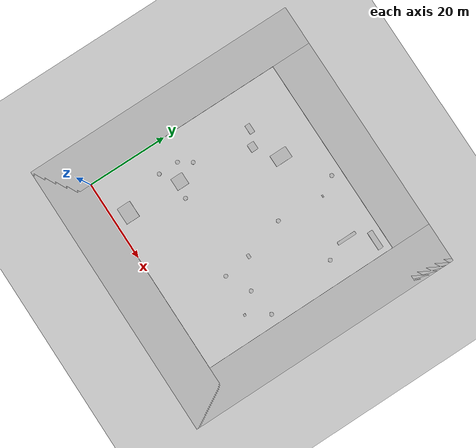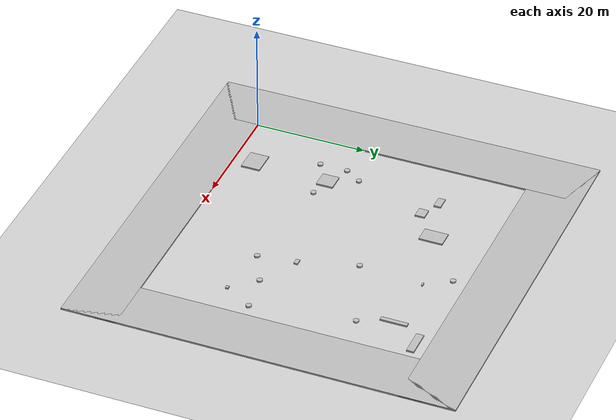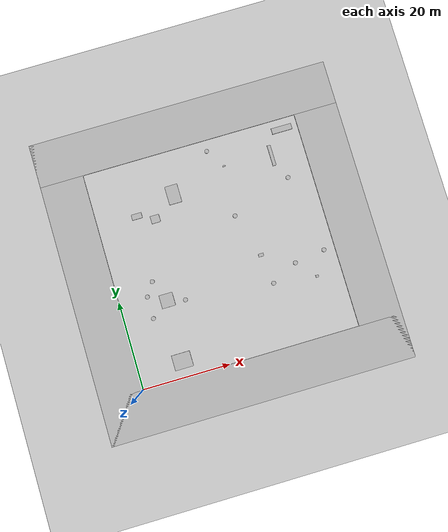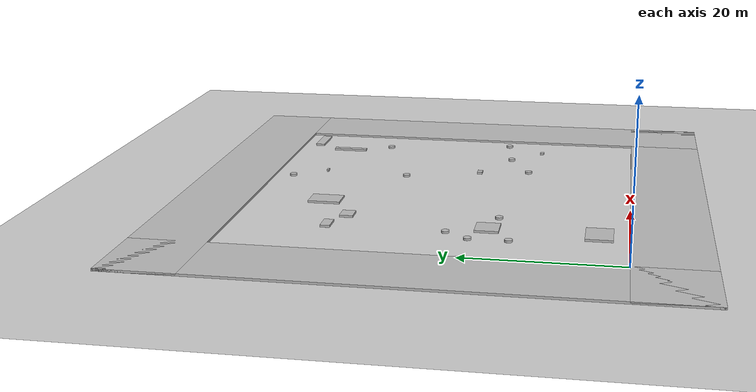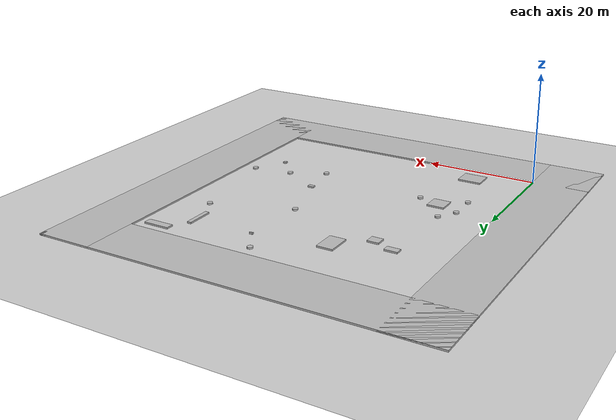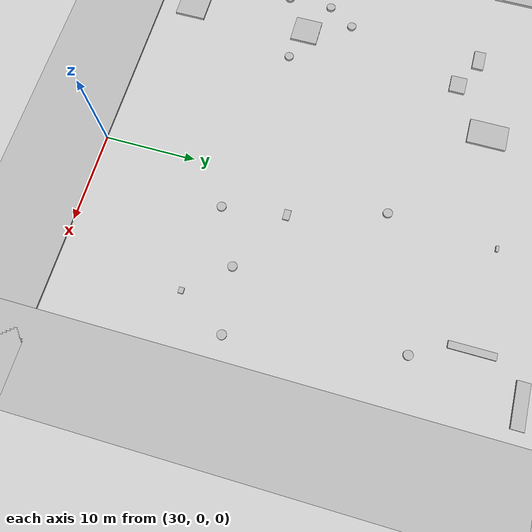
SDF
<?xml version="1.0" encoding="UTF-8" standalone="no"?>
<sdf version="1.5">
	<world name="default">
		<include>
			<uri>model://sun</uri>
		</include>
		<include>
			<uri>model://ground_plane</uri>
		</include>
		<physics type="ode">
			<real_time_update>1000.0</real_time_update>
			<real_time_factor>1</real_time_factor>
			<max_step_size>0.001</max_step_size>
			<ode>
				<solver>
					<type>quick</type>
					<iters>150</iters>
					<precon_iters>0</precon_iters>
					<sor>1.400000</sor>
					<use_dynamic_moi_rescaling>1</use_dynamic_moi_rescaling>
				</solver>
				<constraints>
					<cfm>0.00001</cfm>
					<erp>0.2</erp>
					<contact_max_correcting_vel>2000.00000</contact_max_correcting_vel>
					<contact_surface_layer>0.01000</contact_surface_layer>
				</constraints>
			</ode>
		</physics>
		<gravity>0 0 -9.8</gravity>
		<magnetic_field>6e-06 2.3e-05 -4.2e-05</magnetic_field>
		<atmosphere type="adiabatic"/>
		<scene>
			<ambient>0.4 0.4 0.4 1</ambient>
			<background>0.7 0.7 0.7 1</background>
			<shadows>1</shadows>
		</scene>
		<model name="wall_0">
			<pose frame="">-5.0 25.0 0 0 0 0</pose>
			<link name="link">
				<kinematic>1</kinematic>
				<collision name="collision">
					<geometry>
						<box>
							<size>10.0 70.0 0.4</size>
						</box>
					</geometry>
					<max_contacts>10</max_contacts>
					<surface>
						<contact>
							<ode/>
						</contact>
						<bounce/>
						<friction>
							<torsional>
								<ode/>
							</torsional>
							<ode/>
						</friction>
					</surface>
				</collision>
				<visual name="visual">
					<geometry>
						<box>
							<size>10.0 70.0 0.4</size>
						</box>
					</geometry>
				</visual>
				<self_collide>0</self_collide>
				<inertial>
					<mass>99</mass>
					<inertia>
						<ixx>1</ixx>
						<ixy>0</ixy>
						<ixz>0</ixz>
						<iyy>1</iyy>
						<iyz>0</iyz>
						<izz>1</izz>
					</inertia>
				</inertial>
				<gravity>1</gravity>
			</link>
		</model>
		<model name="wall_1">
			<pose frame="">25.0 -5.0 0 0 0 0</pose>
			<link name="link">
				<kinematic>1</kinematic>
				<collision name="collision">
					<geometry>
						<box>
							<size>70.0 10.0 0.4</size>
						</box>
					</geometry>
					<max_contacts>10</max_contacts>
					<surface>
						<contact>
							<ode/>
						</contact>
						<bounce/>
						<friction>
							<torsional>
								<ode/>
							</torsional>
							<ode/>
						</friction>
					</surface>
				</collision>
				<visual name="visual">
					<geometry>
						<box>
							<size>70.0 10.0 0.4</size>
						</box>
					</geometry>
				</visual>
				<self_collide>0</self_collide>
				<inertial>
					<mass>99</mass>
					<inertia>
						<ixx>1</ixx>
						<ixy>0</ixy>
						<ixz>0</ixz>
						<iyy>1</iyy>
						<iyz>0</iyz>
						<izz>1</izz>
					</inertia>
				</inertial>
				<gravity>1</gravity>
			</link>
		</model>
		<model name="wall_2">
			<pose frame="">25.0 55.0 0 0 0 0</pose>
			<link name="link">
				<kinematic>1</kinematic>
				<collision name="collision">
					<geometry>
						<box>
							<size>70.0 10.0 0.4</size>
						</box>
					</geometry>
					<max_contacts>10</max_contacts>
					<surface>
						<contact>
							<ode/>
						</contact>
						<bounce/>
						<friction>
							<torsional>
								<ode/>
							</torsional>
							<ode/>
						</friction>
					</surface>
				</collision>
				<visual name="visual">
					<geometry>
						<box>
							<size>70.0 10.0 0.4</size>
						</box>
					</geometry>
				</visual>
				<self_collide>0</self_collide>
				<inertial>
					<mass>99</mass>
					<inertia>
						<ixx>1</ixx>
						<ixy>0</ixy>
						<ixz>0</ixz>
						<iyy>1</iyy>
						<iyz>0</iyz>
						<izz>1</izz>
					</inertia>
				</inertial>
				<gravity>1</gravity>
			</link>
		</model>
		<model name="wall_3">
			<pose frame="">55.0 25.0 0 0 0 0</pose>
			<link name="link">
				<kinematic>1</kinematic>
				<collision name="collision">
					<geometry>
						<box>
							<size>10.0 70.0 0.4</size>
						</box>
					</geometry>
					<max_contacts>10</max_contacts>
					<surface>
						<contact>
							<ode/>
						</contact>
						<bounce/>
						<friction>
							<torsional>
								<ode/>
							</torsional>
							<ode/>
						</friction>
					</surface>
				</collision>
				<visual name="visual">
					<geometry>
						<box>
							<size>10.0 70.0 0.4</size>
						</box>
					</geometry>
				</visual>
				<self_collide>0</self_collide>
				<inertial>
					<mass>99</mass>
					<inertia>
						<ixx>1</ixx>
						<ixy>0</ixy>
						<ixz>0</ixz>
						<iyy>1</iyy>
						<iyz>0</iyz>
						<izz>1</izz>
					</inertia>
				</inertial>
				<gravity>1</gravity>
			</link>
		</model>
		<model name="cyl_0">
			<pose frame="">8.5 22.5 0 0 0 0</pose>
			<link name="link">
				<kinematic>1</kinematic>
				<collision name="collision">
					<geometry>
						<cylinder>
							<radius>0.5</radius>
							<length>0.4</length>
						</cylinder>
					</geometry>
					<max_contacts>10</max_contacts>
					<surface>
						<contact>
							<ode/>
						</contact>
						<bounce/>
						<friction>
							<torsional>
								<ode/>
							</torsional>
							<ode/>
						</friction>
					</surface>
				</collision>
				<visual name="visual">
					<geometry>
						<cylinder>
							<radius>0.5</radius>
							<length>0.4</length>
						</cylinder>
					</geometry>
				</visual>
				<self_collide>0</self_collide>
				<inertial>
					<mass>99</mass>
					<inertia>
						<ixx>1</ixx>
						<ixy>0</ixy>
						<ixz>0</ixz>
						<iyy>1</iyy>
						<iyz>0</iyz>
						<izz>1</izz>
					</inertia>
				</inertial>
				<gravity>1</gravity>
			</link>
		</model>
		<model name="cyl_1">
			<pose frame="">40.5 17.5 0 0 0 0</pose>
			<link name="link">
				<kinematic>1</kinematic>
				<collision name="collision">
					<geometry>
						<cylinder>
							<radius>0.5</radius>
							<length>0.4</length>
						</cylinder>
					</geometry>
					<max_contacts>10</max_contacts>
					<surface>
						<contact>
							<ode/>
						</contact>
						<bounce/>
						<friction>
							<torsional>
								<ode/>
							</torsional>
							<ode/>
						</friction>
					</surface>
				</collision>
				<visual name="visual">
					<geometry>
						<cylinder>
							<radius>0.5</radius>
							<length>0.4</length>
						</cylinder>
					</geometry>
				</visual>
				<self_collide>0</self_collide>
				<inertial>
					<mass>99</mass>
					<inertia>
						<ixx>1</ixx>
						<ixy>0</ixy>
						<ixz>0</ixz>
						<iyy>1</iyy>
						<iyz>0</iyz>
						<izz>1</izz>
					</inertia>
				</inertial>
				<gravity>1</gravity>
			</link>
		</model>
		<model name="cyl_2">
			<pose frame="">6.5 19.5 0 0 0 0</pose>
			<link name="link">
				<kinematic>1</kinematic>
				<collision name="collision">
					<geometry>
						<cylinder>
							<radius>0.5</radius>
							<length>0.4</length>
						</cylinder>
					</geometry>
					<max_contacts>10</max_contacts>
					<surface>
						<contact>
							<ode/>
						</contact>
						<bounce/>
						<friction>
							<torsional>
								<ode/>
							</torsional>
							<ode/>
						</friction>
					</surface>
				</collision>
				<visual name="visual">
					<geometry>
						<cylinder>
							<radius>0.5</radius>
							<length>0.4</length>
						</cylinder>
					</geometry>
				</visual>
				<self_collide>0</self_collide>
				<inertial>
					<mass>99</mass>
					<inertia>
						<ixx>1</ixx>
						<ixy>0</ixy>
						<ixz>0</ixz>
						<iyy>1</iyy>
						<iyz>0</iyz>
						<izz>1</izz>
					</inertia>
				</inertial>
				<gravity>1</gravity>
			</link>
		</model>
		<model name="cyl_3">
			<pose frame="">47.5 18.5 0 0 0 0</pose>
			<link name="link">
				<kinematic>1</kinematic>
				<collision name="collision">
					<geometry>
						<cylinder>
							<radius>0.5</radius>
							<length>0.4</length>
						</cylinder>
					</geometry>
					<max_contacts>10</max_contacts>
					<surface>
						<contact>
							<ode/>
						</contact>
						<bounce/>
						<friction>
							<torsional>
								<ode/>
							</torsional>
							<ode/>
						</friction>
					</surface>
				</collision>
				<visual name="visual">
					<geometry>
						<cylinder>
							<radius>0.5</radius>
							<length>0.4</length>
						</cylinder>
					</geometry>
				</visual>
				<self_collide>0</self_collide>
				<inertial>
					<mass>99</mass>
					<inertia>
						<ixx>1</ixx>
						<ixy>0</ixy>
						<ixz>0</ixz>
						<iyy>1</iyy>
						<iyz>0</iyz>
						<izz>1</izz>
					</inertia>
				</inertial>
				<gravity>1</gravity>
			</link>
		</model>
		<model name="cyl_4">
			<pose frame="">44.5 36.5 0 0 0 0</pose>
			<link name="link">
				<kinematic>1</kinematic>
				<collision name="collision">
					<geometry>
						<cylinder>
							<radius>0.5</radius>
							<length>0.4</length>
						</cylinder>
					</geometry>
					<max_contacts>10</max_contacts>
					<surface>
						<contact>
							<ode/>
						</contact>
						<bounce/>
						<friction>
							<torsional>
								<ode/>
							</torsional>
							<ode/>
						</friction>
					</surface>
				</collision>
				<visual name="visual">
					<geometry>
						<cylinder>
							<radius>0.5</radius>
							<length>0.4</length>
						</cylinder>
					</geometry>
				</visual>
				<self_collide>0</self_collide>
				<inertial>
					<mass>99</mass>
					<inertia>
						<ixx>1</ixx>
						<ixy>0</ixy>
						<ixz>0</ixz>
						<iyy>1</iyy>
						<iyz>0</iyz>
						<izz>1</izz>
					</inertia>
				</inertial>
				<gravity>1</gravity>
			</link>
		</model>
		<model name="cyl_5">
			<pose frame="">34.5 14.5 0 0 0 0</pose>
			<link name="link">
				<kinematic>1</kinematic>
				<collision name="collision">
					<geometry>
						<cylinder>
							<radius>0.5</radius>
							<length>0.4</length>
						</cylinder>
					</geometry>
					<max_contacts>10</max_contacts>
					<surface>
						<contact>
							<ode/>
						</contact>
						<bounce/>
						<friction>
							<torsional>
								<ode/>
							</torsional>
							<ode/>
						</friction>
					</surface>
				</collision>
				<visual name="visual">
					<geometry>
						<cylinder>
							<radius>0.5</radius>
							<length>0.4</length>
						</cylinder>
					</geometry>
				</visual>
				<self_collide>0</self_collide>
				<inertial>
					<mass>99</mass>
					<inertia>
						<ixx>1</ixx>
						<ixy>0</ixy>
						<ixz>0</ixz>
						<iyy>1</iyy>
						<iyz>0</iyz>
						<izz>1</izz>
					</inertia>
				</inertial>
				<gravity>1</gravity>
			</link>
		</model>
		<model name="cyl_6">
			<pose frame="">14.5 16.5 0 0 0 0</pose>
			<link name="link">
				<kinematic>1</kinematic>
				<collision name="collision">
					<geometry>
						<cylinder>
							<radius>0.5</radius>
							<length>0.4</length>
						</cylinder>
					</geometry>
					<max_contacts>10</max_contacts>
					<surface>
						<contact>
							<ode/>
						</contact>
						<bounce/>
						<friction>
							<torsional>
								<ode/>
							</torsional>
							<ode/>
						</friction>
					</surface>
				</collision>
				<visual name="visual">
					<geometry>
						<cylinder>
							<radius>0.5</radius>
							<length>0.4</length>
						</cylinder>
					</geometry>
				</visual>
				<self_collide>0</self_collide>
				<inertial>
					<mass>99</mass>
					<inertia>
						<ixx>1</ixx>
						<ixy>0</ixy>
						<ixz>0</ixz>
						<iyy>1</iyy>
						<iyz>0</iyz>
						<izz>1</izz>
					</inertia>
				</inertial>
				<gravity>1</gravity>
			</link>
		</model>
		<model name="cyl_7">
			<pose frame="">30.5 31.5 0 0 0 0</pose>
			<link name="link">
				<kinematic>1</kinematic>
				<collision name="collision">
					<geometry>
						<cylinder>
							<radius>0.5</radius>
							<length>0.4</length>
						</cylinder>
					</geometry>
					<max_contacts>10</max_contacts>
					<surface>
						<contact>
							<ode/>
						</contact>
						<bounce/>
						<friction>
							<torsional>
								<ode/>
							</torsional>
							<ode/>
						</friction>
					</surface>
				</collision>
				<visual name="visual">
					<geometry>
						<cylinder>
							<radius>0.5</radius>
							<length>0.4</length>
						</cylinder>
					</geometry>
				</visual>
				<self_collide>0</self_collide>
				<inertial>
					<mass>99</mass>
					<inertia>
						<ixx>1</ixx>
						<ixy>0</ixy>
						<ixz>0</ixz>
						<iyy>1</iyy>
						<iyz>0</iyz>
						<izz>1</izz>
					</inertia>
				</inertial>
				<gravity>1</gravity>
			</link>
		</model>
		<model name="cyl_8">
			<pose frame="">28.5 47.5 0 0 0 0</pose>
			<link name="link">
				<kinematic>1</kinematic>
				<collision name="collision">
					<geometry>
						<cylinder>
							<radius>0.5</radius>
							<length>0.4</length>
						</cylinder>
					</geometry>
					<max_contacts>10</max_contacts>
					<surface>
						<contact>
							<ode/>
						</contact>
						<bounce/>
						<friction>
							<torsional>
								<ode/>
							</torsional>
							<ode/>
						</friction>
					</surface>
				</collision>
				<visual name="visual">
					<geometry>
						<cylinder>
							<radius>0.5</radius>
							<length>0.4</length>
						</cylinder>
					</geometry>
				</visual>
				<self_collide>0</self_collide>
				<inertial>
					<mass>99</mass>
					<inertia>
						<ixx>1</ixx>
						<ixy>0</ixy>
						<ixz>0</ixz>
						<iyy>1</iyy>
						<iyz>0</iyz>
						<izz>1</izz>
					</inertia>
				</inertial>
				<gravity>1</gravity>
			</link>
		</model>
		<model name="cyl_9">
			<pose frame="">6.5 14.5 0 0 0 0</pose>
			<link name="link">
				<kinematic>1</kinematic>
				<collision name="collision">
					<geometry>
						<cylinder>
							<radius>0.5</radius>
							<length>0.4</length>
						</cylinder>
					</geometry>
					<max_contacts>10</max_contacts>
					<surface>
						<contact>
							<ode/>
						</contact>
						<bounce/>
						<friction>
							<torsional>
								<ode/>
							</torsional>
							<ode/>
						</friction>
					</surface>
				</collision>
				<visual name="visual">
					<geometry>
						<cylinder>
							<radius>0.5</radius>
							<length>0.4</length>
						</cylinder>
					</geometry>
				</visual>
				<self_collide>0</self_collide>
				<inertial>
					<mass>99</mass>
					<inertia>
						<ixx>1</ixx>
						<ixy>0</ixy>
						<ixz>0</ixz>
						<iyy>1</iyy>
						<iyz>0</iyz>
						<izz>1</izz>
					</inertia>
				</inertial>
				<gravity>1</gravity>
			</link>
		</model>
		<model name="wall_4">
			<pose frame="">13.020712738825203 35.88097198017468 0 0 0 0</pose>
			<link name="link">
				<kinematic>1</kinematic>
				<collision name="collision">
					<geometry>
						<box>
							<size>2.041425477650407 1.7619439603493625 0.4</size>
						</box>
					</geometry>
					<max_contacts>10</max_contacts>
					<surface>
						<contact>
							<ode/>
						</contact>
						<bounce/>
						<friction>
							<torsional>
								<ode/>
							</torsional>
							<ode/>
						</friction>
					</surface>
				</collision>
				<visual name="visual">
					<geometry>
						<box>
							<size>2.041425477650407 1.7619439603493625 0.4</size>
						</box>
					</geometry>
				</visual>
				<self_collide>0</self_collide>
				<inertial>
					<mass>99</mass>
					<inertia>
						<ixx>1</ixx>
						<ixy>0</ixy>
						<ixz>0</ixz>
						<iyy>1</iyy>
						<iyz>0</iyz>
						<izz>1</izz>
					</inertia>
				</inertial>
				<gravity>1</gravity>
			</link>
		</model>
		<model name="wall_5">
			<pose frame="">18.45568092034261 40.1281074208517 0 0 0 0</pose>
			<link name="link">
				<kinematic>1</kinematic>
				<collision name="collision">
					<geometry>
						<box>
							<size>2.911361840685214 4.256214841703393 0.4</size>
						</box>
					</geometry>
					<max_contacts>10</max_contacts>
					<surface>
						<contact>
							<ode/>
						</contact>
						<bounce/>
						<friction>
							<torsional>
								<ode/>
							</torsional>
							<ode/>
						</friction>
					</surface>
				</collision>
				<visual name="visual">
					<geometry>
						<box>
							<size>2.911361840685214 4.256214841703393 0.4</size>
						</box>
					</geometry>
				</visual>
				<self_collide>0</self_collide>
				<inertial>
					<mass>99</mass>
					<inertia>
						<ixx>1</ixx>
						<ixy>0</ixy>
						<ixz>0</ixz>
						<iyy>1</iyy>
						<iyz>0</iyz>
						<izz>1</izz>
					</inertia>
				</inertial>
				<gravity>1</gravity>
			</link>
		</model>
		<model name="wall_6">
			<pose frame="">42.38296467301498 42.40980571614206 0 0 0 0</pose>
			<link name="link">
				<kinematic>1</kinematic>
				<collision name="collision">
					<geometry>
						<box>
							<size>0.765929346029966 4.819611432284118 0.4</size>
						</box>
					</geometry>
					<max_contacts>10</max_contacts>
					<surface>
						<contact>
							<ode/>
						</contact>
						<bounce/>
						<friction>
							<torsional>
								<ode/>
							</torsional>
							<ode/>
						</friction>
					</surface>
				</collision>
				<visual name="visual">
					<geometry>
						<box>
							<size>0.765929346029966 4.819611432284118 0.4</size>
						</box>
					</geometry>
				</visual>
				<self_collide>0</self_collide>
				<inertial>
					<mass>99</mass>
					<inertia>
						<ixx>1</ixx>
						<ixy>0</ixy>
						<ixz>0</ixz>
						<iyy>1</iyy>
						<iyz>0</iyz>
						<izz>1</izz>
					</inertia>
				</inertial>
				<gravity>1</gravity>
			</link>
		</model>
		<model name="wall_7">
			<pose frame="">10.541604139899798 17.52223850536493 0 0 0 0</pose>
			<link name="link">
				<kinematic>1</kinematic>
				<collision name="collision">
					<geometry>
						<box>
							<size>3.0832082797995946 3.0444770107298598 0.4</size>
						</box>
					</geometry>
					<max_contacts>10</max_contacts>
					<surface>
						<contact>
							<ode/>
						</contact>
						<bounce/>
						<friction>
							<torsional>
								<ode/>
							</torsional>
							<ode/>
						</friction>
					</surface>
				</collision>
				<visual name="visual">
					<geometry>
						<box>
							<size>3.0832082797995946 3.0444770107298598 0.4</size>
						</box>
					</geometry>
				</visual>
				<self_collide>0</self_collide>
				<inertial>
					<mass>99</mass>
					<inertia>
						<ixx>1</ixx>
						<ixy>0</ixy>
						<ixz>0</ixz>
						<iyy>1</iyy>
						<iyz>0</iyz>
						<izz>1</izz>
					</inertia>
				</inertial>
				<gravity>1</gravity>
			</link>
		</model>
		<model name="wall_8">
			<pose frame="">10.098400220641151 3.72248846069757 0 0 0 0</pose>
			<link name="link">
				<kinematic>1</kinematic>
				<collision name="collision">
					<geometry>
						<box>
							<size>4.196800441282302 3.44497692139514 0.4</size>
						</box>
					</geometry>
					<max_contacts>10</max_contacts>
					<surface>
						<contact>
							<ode/>
						</contact>
						<bounce/>
						<friction>
							<torsional>
								<ode/>
							</torsional>
							<ode/>
						</friction>
					</surface>
				</collision>
				<visual name="visual">
					<geometry>
						<box>
							<size>4.196800441282302 3.44497692139514 0.4</size>
						</box>
					</geometry>
				</visual>
				<self_collide>0</self_collide>
				<inertial>
					<mass>99</mass>
					<inertia>
						<ixx>1</ixx>
						<ixy>0</ixy>
						<ixz>0</ixz>
						<iyy>1</iyy>
						<iyz>0</iyz>
						<izz>1</izz>
					</inertia>
				</inertial>
				<gravity>1</gravity>
			</link>
		</model>
		<model name="wall_9">
			<pose frame="">44.30931054896741 13.268936310148868 0 0 0 0</pose>
			<link name="link">
				<kinematic>1</kinematic>
				<collision name="collision">
					<geometry>
						<box>
							<size>0.6186210979348272 0.5378726202977352 0.4</size>
						</box>
					</geometry>
					<max_contacts>10</max_contacts>
					<surface>
						<contact>
							<ode/>
						</contact>
						<bounce/>
						<friction>
							<torsional>
								<ode/>
							</torsional>
							<ode/>
						</friction>
					</surface>
				</collision>
				<visual name="visual">
					<geometry>
						<box>
							<size>0.6186210979348272 0.5378726202977352 0.4</size>
						</box>
					</geometry>
				</visual>
				<self_collide>0</self_collide>
				<inertial>
					<mass>99</mass>
					<inertia>
						<ixx>1</ixx>
						<ixy>0</ixy>
						<ixz>0</ixz>
						<iyy>1</iyy>
						<iyz>0</iyz>
						<izz>1</izz>
					</inertia>
				</inertial>
				<gravity>1</gravity>
			</link>
		</model>
		<model name="wall_10">
			<pose frame="">46.33165661794685 47.667067312005706 0 0 0 0</pose>
			<link name="link">
				<kinematic>1</kinematic>
				<collision name="collision">
					<geometry>
						<box>
							<size>4.6633132358937015 1.3341346240114105 0.4</size>
						</box>
					</geometry>
					<max_contacts>10</max_contacts>
					<surface>
						<contact>
							<ode/>
						</contact>
						<bounce/>
						<friction>
							<torsional>
								<ode/>
							</torsional>
							<ode/>
						</friction>
					</surface>
				</collision>
				<visual name="visual">
					<geometry>
						<box>
							<size>4.6633132358937015 1.3341346240114105 0.4</size>
						</box>
					</geometry>
				</visual>
				<self_collide>0</self_collide>
				<inertial>
					<mass>99</mass>
					<inertia>
						<ixx>1</ixx>
						<ixy>0</ixy>
						<ixz>0</ixz>
						<iyy>1</iyy>
						<iyz>0</iyz>
						<izz>1</izz>
					</inertia>
				</inertial>
				<gravity>1</gravity>
			</link>
		</model>
		<model name="wall_11">
			<pose frame="">33.56816787004704 21.357163510621437 0 0 0 0</pose>
			<link name="link">
				<kinematic>1</kinematic>
				<collision name="collision">
					<geometry>
						<box>
							<size>1.1363357400940866 0.714327021242871 0.4</size>
						</box>
					</geometry>
					<max_contacts>10</max_contacts>
					<surface>
						<contact>
							<ode/>
						</contact>
						<bounce/>
						<friction>
							<torsional>
								<ode/>
							</torsional>
							<ode/>
						</friction>
					</surface>
				</collision>
				<visual name="visual">
					<geometry>
						<box>
							<size>1.1363357400940866 0.714327021242871 0.4</size>
						</box>
					</geometry>
				</visual>
				<self_collide>0</self_collide>
				<inertial>
					<mass>99</mass>
					<inertia>
						<ixx>1</ixx>
						<ixy>0</ixy>
						<ixz>0</ixz>
						<iyy>1</iyy>
						<iyz>0</iyz>
						<izz>1</izz>
					</inertia>
				</inertial>
				<gravity>1</gravity>
			</link>
		</model>
		<model name="wall_12">
			<pose frame="">31.327315165101524 43.144814527047124 0 0 0 0</pose>
			<link name="link">
				<kinematic>1</kinematic>
				<collision name="collision">
					<geometry>
						<box>
							<size>0.6546303302030465 0.2896290540942509 0.4</size>
						</box>
					</geometry>
					<max_contacts>10</max_contacts>
					<surface>
						<contact>
							<ode/>
						</contact>
						<bounce/>
						<friction>
							<torsional>
								<ode/>
							</torsional>
							<ode/>
						</friction>
					</surface>
				</collision>
				<visual name="visual">
					<geometry>
						<box>
							<size>0.6546303302030465 0.2896290540942509 0.4</size>
						</box>
					</geometry>
				</visual>
				<self_collide>0</self_collide>
				<inertial>
					<mass>99</mass>
					<inertia>
						<ixx>1</ixx>
						<ixy>0</ixy>
						<ixz>0</ixz>
						<iyy>1</iyy>
						<iyz>0</iyz>
						<izz>1</izz>
					</inertia>
				</inertial>
				<gravity>1</gravity>
			</link>
		</model>
		<model name="wall_13">
			<pose frame="">9.169881835005048 37.632785737170096 0 0 0 0</pose>
			<link name="link">
				<kinematic>1</kinematic>
				<collision name="collision">
					<geometry>
						<box>
							<size>2.3397636700100954 1.2655714743401958 0.4</size>
						</box>
					</geometry>
					<max_contacts>10</max_contacts>
					<surface>
						<contact>
							<ode/>
						</contact>
						<bounce/>
						<friction>
							<torsional>
								<ode/>
							</torsional>
							<ode/>
						</friction>
					</surface>
				</collision>
				<visual name="visual">
					<geometry>
						<box>
							<size>2.3397636700100954 1.2655714743401958 0.4</size>
						</box>
					</geometry>
				</visual>
				<self_collide>0</self_collide>
				<inertial>
					<mass>99</mass>
					<inertia>
						<ixx>1</ixx>
						<ixy>0</ixy>
						<ixz>0</ixz>
						<iyy>1</iyy>
						<iyz>0</iyz>
						<izz>1</izz>
					</inertia>
				</inertial>
				<gravity>1</gravity>
			</link>
		</model>
	</world>
</sdf>
